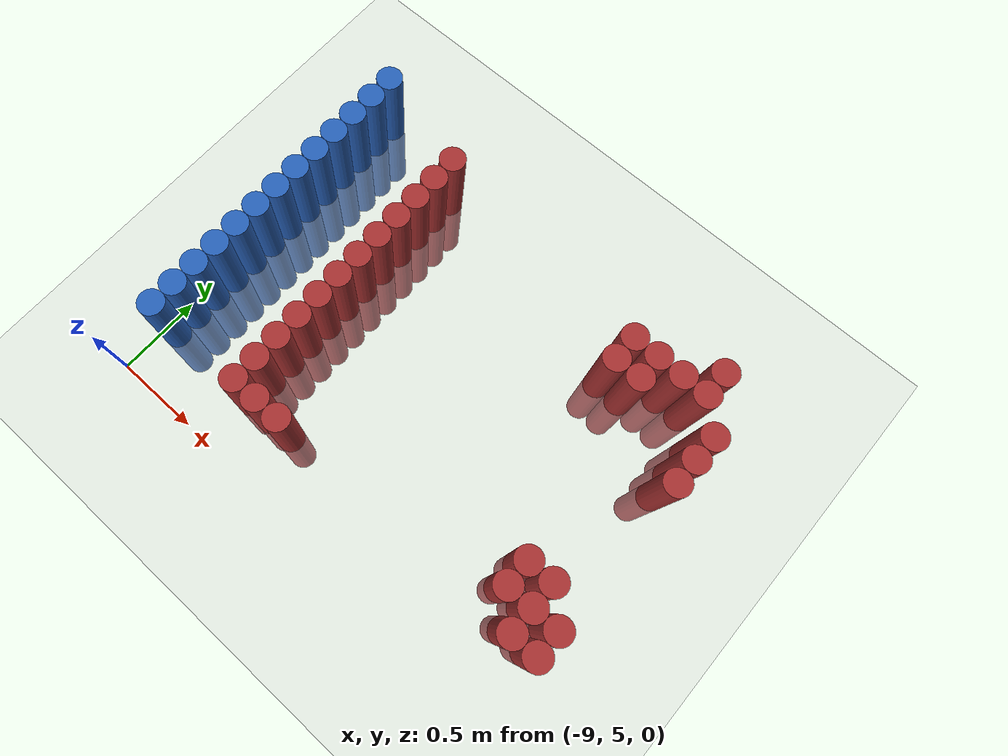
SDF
<sdf version="1.6">
 <world name="default">
  <model name="ground_plane">
   <static>1</static>
   <link name="link">
    <collision name="collision">
     <geometry><plane><normal>0 0 1</normal><size>100 100</size></plane></geometry>
     <surface><friction><ode><mu>100</mu><mu2>50</mu2></ode></friction></surface>
    </collision>
    <visual name="visual">
     <cast_shadows>0</cast_shadows>
     <geometry><plane><normal>0 0 1</normal><size>100 100</size></plane></geometry>
     <material>
      <script><uri>file://media/materials/scripts/gazebo.material</uri><name>Gazebo/Grey</name></script>
     </material>
    </visual>
   </link>
  </model>
  <model name="unit_cylinder_126">
   <static>1</static>
   <pose>-8.925000 5.325000 0.000000 0.000000 0.000000 0.000000</pose>
   <link name="link">
    <inertial>
     <mass>1</mass>
     <inertia><ixx>0.145833</ixx><ixy>0</ixy><ixz>0</ixz><iyy>0.145833</iyy><iyz>0</iyz><izz>0.125</izz></inertia>
    </inertial>
    <collision name="collision">
     <geometry><cylinder><radius>0.075000</radius><length>1</length></cylinder></geometry>
    </collision>
    <visual name="visual">
     <geometry><cylinder><radius>0.075000</radius><length>1</length></cylinder></geometry>
     <material>
      <ambient>0.152000 0.379000 0.720000 1</ambient>
      <diffuse>0.152000 0.379000 0.720000 1</diffuse>
     </material>
     <material>
      <script><name>Gazebo/Grey</name><uri>file://media/materials/scripts/gazebo.material</uri></script>
     </material>
    </visual>
   </link>
  </model>
  <model name="unit_cylinder_127">
   <static>1</static>
   <pose>-8.925000 5.475000 0.000000 0.000000 0.000000 0.000000</pose>
   <link name="link">
    <inertial>
     <mass>1</mass>
     <inertia><ixx>0.145833</ixx><ixy>0</ixy><ixz>0</ixz><iyy>0.145833</iyy><iyz>0</iyz><izz>0.125</izz></inertia>
    </inertial>
    <collision name="collision">
     <geometry><cylinder><radius>0.075000</radius><length>1</length></cylinder></geometry>
    </collision>
    <visual name="visual">
     <geometry><cylinder><radius>0.075000</radius><length>1</length></cylinder></geometry>
     <material>
      <ambient>0.152000 0.379000 0.720000 1</ambient>
      <diffuse>0.152000 0.379000 0.720000 1</diffuse>
     </material>
     <material>
      <script><name>Gazebo/Grey</name><uri>file://media/materials/scripts/gazebo.material</uri></script>
     </material>
    </visual>
   </link>
  </model>
  <model name="unit_cylinder_128">
   <static>1</static>
   <pose>-8.925000 5.625000 0.000000 0.000000 0.000000 0.000000</pose>
   <link name="link">
    <inertial>
     <mass>1</mass>
     <inertia><ixx>0.145833</ixx><ixy>0</ixy><ixz>0</ixz><iyy>0.145833</iyy><iyz>0</iyz><izz>0.125</izz></inertia>
    </inertial>
    <collision name="collision">
     <geometry><cylinder><radius>0.075000</radius><length>1</length></cylinder></geometry>
    </collision>
    <visual name="visual">
     <geometry><cylinder><radius>0.075000</radius><length>1</length></cylinder></geometry>
     <material>
      <ambient>0.152000 0.379000 0.720000 1</ambient>
      <diffuse>0.152000 0.379000 0.720000 1</diffuse>
     </material>
     <material>
      <script><name>Gazebo/Grey</name><uri>file://media/materials/scripts/gazebo.material</uri></script>
     </material>
    </visual>
   </link>
  </model>
  <model name="unit_cylinder_129">
   <static>1</static>
   <pose>-8.925000 5.775000 0.000000 0.000000 0.000000 0.000000</pose>
   <link name="link">
    <inertial>
     <mass>1</mass>
     <inertia><ixx>0.145833</ixx><ixy>0</ixy><ixz>0</ixz><iyy>0.145833</iyy><iyz>0</iyz><izz>0.125</izz></inertia>
    </inertial>
    <collision name="collision">
     <geometry><cylinder><radius>0.075000</radius><length>1</length></cylinder></geometry>
    </collision>
    <visual name="visual">
     <geometry><cylinder><radius>0.075000</radius><length>1</length></cylinder></geometry>
     <material>
      <ambient>0.152000 0.379000 0.720000 1</ambient>
      <diffuse>0.152000 0.379000 0.720000 1</diffuse>
     </material>
     <material>
      <script><name>Gazebo/Grey</name><uri>file://media/materials/scripts/gazebo.material</uri></script>
     </material>
    </visual>
   </link>
  </model>
  <model name="unit_cylinder_130">
   <static>1</static>
   <pose>-8.925000 5.925000 0.000000 0.000000 0.000000 0.000000</pose>
   <link name="link">
    <inertial>
     <mass>1</mass>
     <inertia><ixx>0.145833</ixx><ixy>0</ixy><ixz>0</ixz><iyy>0.145833</iyy><iyz>0</iyz><izz>0.125</izz></inertia>
    </inertial>
    <collision name="collision">
     <geometry><cylinder><radius>0.075000</radius><length>1</length></cylinder></geometry>
    </collision>
    <visual name="visual">
     <geometry><cylinder><radius>0.075000</radius><length>1</length></cylinder></geometry>
     <material>
      <ambient>0.152000 0.379000 0.720000 1</ambient>
      <diffuse>0.152000 0.379000 0.720000 1</diffuse>
     </material>
     <material>
      <script><name>Gazebo/Grey</name><uri>file://media/materials/scripts/gazebo.material</uri></script>
     </material>
    </visual>
   </link>
  </model>
  <model name="unit_cylinder_131">
   <static>1</static>
   <pose>-8.925000 6.075000 0.000000 0.000000 0.000000 0.000000</pose>
   <link name="link">
    <inertial>
     <mass>1</mass>
     <inertia><ixx>0.145833</ixx><ixy>0</ixy><ixz>0</ixz><iyy>0.145833</iyy><iyz>0</iyz><izz>0.125</izz></inertia>
    </inertial>
    <collision name="collision">
     <geometry><cylinder><radius>0.075000</radius><length>1</length></cylinder></geometry>
    </collision>
    <visual name="visual">
     <geometry><cylinder><radius>0.075000</radius><length>1</length></cylinder></geometry>
     <material>
      <ambient>0.152000 0.379000 0.720000 1</ambient>
      <diffuse>0.152000 0.379000 0.720000 1</diffuse>
     </material>
     <material>
      <script><name>Gazebo/Grey</name><uri>file://media/materials/scripts/gazebo.material</uri></script>
     </material>
    </visual>
   </link>
  </model>
  <model name="unit_cylinder_132">
   <static>1</static>
   <pose>-8.925000 6.225000 0.000000 0.000000 0.000000 0.000000</pose>
   <link name="link">
    <inertial>
     <mass>1</mass>
     <inertia><ixx>0.145833</ixx><ixy>0</ixy><ixz>0</ixz><iyy>0.145833</iyy><iyz>0</iyz><izz>0.125</izz></inertia>
    </inertial>
    <collision name="collision">
     <geometry><cylinder><radius>0.075000</radius><length>1</length></cylinder></geometry>
    </collision>
    <visual name="visual">
     <geometry><cylinder><radius>0.075000</radius><length>1</length></cylinder></geometry>
     <material>
      <ambient>0.152000 0.379000 0.720000 1</ambient>
      <diffuse>0.152000 0.379000 0.720000 1</diffuse>
     </material>
     <material>
      <script><name>Gazebo/Grey</name><uri>file://media/materials/scripts/gazebo.material</uri></script>
     </material>
    </visual>
   </link>
  </model>
  <model name="unit_cylinder_133">
   <static>1</static>
   <pose>-8.925000 6.375000 0.000000 0.000000 0.000000 0.000000</pose>
   <link name="link">
    <inertial>
     <mass>1</mass>
     <inertia><ixx>0.145833</ixx><ixy>0</ixy><ixz>0</ixz><iyy>0.145833</iyy><iyz>0</iyz><izz>0.125</izz></inertia>
    </inertial>
    <collision name="collision">
     <geometry><cylinder><radius>0.075000</radius><length>1</length></cylinder></geometry>
    </collision>
    <visual name="visual">
     <geometry><cylinder><radius>0.075000</radius><length>1</length></cylinder></geometry>
     <material>
      <ambient>0.152000 0.379000 0.720000 1</ambient>
      <diffuse>0.152000 0.379000 0.720000 1</diffuse>
     </material>
     <material>
      <script><name>Gazebo/Grey</name><uri>file://media/materials/scripts/gazebo.material</uri></script>
     </material>
    </visual>
   </link>
  </model>
  <model name="unit_cylinder_134">
   <static>1</static>
   <pose>-8.925000 6.525000 0.000000 0.000000 0.000000 0.000000</pose>
   <link name="link">
    <inertial>
     <mass>1</mass>
     <inertia><ixx>0.145833</ixx><ixy>0</ixy><ixz>0</ixz><iyy>0.145833</iyy><iyz>0</iyz><izz>0.125</izz></inertia>
    </inertial>
    <collision name="collision">
     <geometry><cylinder><radius>0.075000</radius><length>1</length></cylinder></geometry>
    </collision>
    <visual name="visual">
     <geometry><cylinder><radius>0.075000</radius><length>1</length></cylinder></geometry>
     <material>
      <ambient>0.152000 0.379000 0.720000 1</ambient>
      <diffuse>0.152000 0.379000 0.720000 1</diffuse>
     </material>
     <material>
      <script><name>Gazebo/Grey</name><uri>file://media/materials/scripts/gazebo.material</uri></script>
     </material>
    </visual>
   </link>
  </model>
  <model name="unit_cylinder_135">
   <static>1</static>
   <pose>-8.925000 6.675000 0.000000 0.000000 0.000000 0.000000</pose>
   <link name="link">
    <inertial>
     <mass>1</mass>
     <inertia><ixx>0.145833</ixx><ixy>0</ixy><ixz>0</ixz><iyy>0.145833</iyy><iyz>0</iyz><izz>0.125</izz></inertia>
    </inertial>
    <collision name="collision">
     <geometry><cylinder><radius>0.075000</radius><length>1</length></cylinder></geometry>
    </collision>
    <visual name="visual">
     <geometry><cylinder><radius>0.075000</radius><length>1</length></cylinder></geometry>
     <material>
      <ambient>0.152000 0.379000 0.720000 1</ambient>
      <diffuse>0.152000 0.379000 0.720000 1</diffuse>
     </material>
     <material>
      <script><name>Gazebo/Grey</name><uri>file://media/materials/scripts/gazebo.material</uri></script>
     </material>
    </visual>
   </link>
  </model>
  <model name="unit_cylinder_136">
   <static>1</static>
   <pose>-8.925000 6.825000 0.000000 0.000000 0.000000 0.000000</pose>
   <link name="link">
    <inertial>
     <mass>1</mass>
     <inertia><ixx>0.145833</ixx><ixy>0</ixy><ixz>0</ixz><iyy>0.145833</iyy><iyz>0</iyz><izz>0.125</izz></inertia>
    </inertial>
    <collision name="collision">
     <geometry><cylinder><radius>0.075000</radius><length>1</length></cylinder></geometry>
    </collision>
    <visual name="visual">
     <geometry><cylinder><radius>0.075000</radius><length>1</length></cylinder></geometry>
     <material>
      <ambient>0.152000 0.379000 0.720000 1</ambient>
      <diffuse>0.152000 0.379000 0.720000 1</diffuse>
     </material>
     <material>
      <script><name>Gazebo/Grey</name><uri>file://media/materials/scripts/gazebo.material</uri></script>
     </material>
    </visual>
   </link>
  </model>
  <model name="unit_cylinder_137">
   <static>1</static>
   <pose>-8.925000 6.975000 0.000000 0.000000 0.000000 0.000000</pose>
   <link name="link">
    <inertial>
     <mass>1</mass>
     <inertia><ixx>0.145833</ixx><ixy>0</ixy><ixz>0</ixz><iyy>0.145833</iyy><iyz>0</iyz><izz>0.125</izz></inertia>
    </inertial>
    <collision name="collision">
     <geometry><cylinder><radius>0.075000</radius><length>1</length></cylinder></geometry>
    </collision>
    <visual name="visual">
     <geometry><cylinder><radius>0.075000</radius><length>1</length></cylinder></geometry>
     <material>
      <ambient>0.152000 0.379000 0.720000 1</ambient>
      <diffuse>0.152000 0.379000 0.720000 1</diffuse>
     </material>
     <material>
      <script><name>Gazebo/Grey</name><uri>file://media/materials/scripts/gazebo.material</uri></script>
     </material>
    </visual>
   </link>
  </model>
  <model name="unit_cylinder_138">
   <static>1</static>
   <pose>-8.925000 7.125000 0.000000 0.000000 0.000000 0.000000</pose>
   <link name="link">
    <inertial>
     <mass>1</mass>
     <inertia><ixx>0.145833</ixx><ixy>0</ixy><ixz>0</ixz><iyy>0.145833</iyy><iyz>0</iyz><izz>0.125</izz></inertia>
    </inertial>
    <collision name="collision">
     <geometry><cylinder><radius>0.075000</radius><length>1</length></cylinder></geometry>
    </collision>
    <visual name="visual">
     <geometry><cylinder><radius>0.075000</radius><length>1</length></cylinder></geometry>
     <material>
      <ambient>0.152000 0.379000 0.720000 1</ambient>
      <diffuse>0.152000 0.379000 0.720000 1</diffuse>
     </material>
     <material>
      <script><name>Gazebo/Grey</name><uri>file://media/materials/scripts/gazebo.material</uri></script>
     </material>
    </visual>
   </link>
  </model>
  <model name="unit_cylinder_162">
   <static>1</static>
   <pose>-8.325000 5.325000 0.000000 0.000000 0.000000 0.000000</pose>
   <link name="link">
    <inertial>
     <mass>1</mass>
     <inertia><ixx>0.145833</ixx><ixy>0</ixy><ixz>0</ixz><iyy>0.145833</iyy><iyz>0</iyz><izz>0.125</izz></inertia>
    </inertial>
    <collision name="collision">
     <geometry><cylinder><radius>0.075000</radius><length>1</length></cylinder></geometry>
    </collision>
    <visual name="visual">
     <geometry><cylinder><radius>0.075000</radius><length>1</length></cylinder></geometry>
     <material>
      <ambient>0.648000 0.192000 0.192000 1</ambient>
      <diffuse>0.648000 0.192000 0.192000 1</diffuse>
     </material>
     <material>
      <script><name>Gazebo/Grey</name><uri>file://media/materials/scripts/gazebo.material</uri></script>
     </material>
    </visual>
   </link>
  </model>
  <model name="unit_cylinder_163">
   <static>1</static>
   <pose>-8.325000 5.475000 0.000000 0.000000 0.000000 0.000000</pose>
   <link name="link">
    <inertial>
     <mass>1</mass>
     <inertia><ixx>0.145833</ixx><ixy>0</ixy><ixz>0</ixz><iyy>0.145833</iyy><iyz>0</iyz><izz>0.125</izz></inertia>
    </inertial>
    <collision name="collision">
     <geometry><cylinder><radius>0.075000</radius><length>1</length></cylinder></geometry>
    </collision>
    <visual name="visual">
     <geometry><cylinder><radius>0.075000</radius><length>1</length></cylinder></geometry>
     <material>
      <ambient>0.648000 0.192000 0.192000 1</ambient>
      <diffuse>0.648000 0.192000 0.192000 1</diffuse>
     </material>
     <material>
      <script><name>Gazebo/Grey</name><uri>file://media/materials/scripts/gazebo.material</uri></script>
     </material>
    </visual>
   </link>
  </model>
  <model name="unit_cylinder_164">
   <static>1</static>
   <pose>-8.325000 5.625000 0.000000 0.000000 0.000000 0.000000</pose>
   <link name="link">
    <inertial>
     <mass>1</mass>
     <inertia><ixx>0.145833</ixx><ixy>0</ixy><ixz>0</ixz><iyy>0.145833</iyy><iyz>0</iyz><izz>0.125</izz></inertia>
    </inertial>
    <collision name="collision">
     <geometry><cylinder><radius>0.075000</radius><length>1</length></cylinder></geometry>
    </collision>
    <visual name="visual">
     <geometry><cylinder><radius>0.075000</radius><length>1</length></cylinder></geometry>
     <material>
      <ambient>0.648000 0.192000 0.192000 1</ambient>
      <diffuse>0.648000 0.192000 0.192000 1</diffuse>
     </material>
     <material>
      <script><name>Gazebo/Grey</name><uri>file://media/materials/scripts/gazebo.material</uri></script>
     </material>
    </visual>
   </link>
  </model>
  <model name="unit_cylinder_165">
   <static>1</static>
   <pose>-8.325000 5.775000 0.000000 0.000000 0.000000 0.000000</pose>
   <link name="link">
    <inertial>
     <mass>1</mass>
     <inertia><ixx>0.145833</ixx><ixy>0</ixy><ixz>0</ixz><iyy>0.145833</iyy><iyz>0</iyz><izz>0.125</izz></inertia>
    </inertial>
    <collision name="collision">
     <geometry><cylinder><radius>0.075000</radius><length>1</length></cylinder></geometry>
    </collision>
    <visual name="visual">
     <geometry><cylinder><radius>0.075000</radius><length>1</length></cylinder></geometry>
     <material>
      <ambient>0.648000 0.192000 0.192000 1</ambient>
      <diffuse>0.648000 0.192000 0.192000 1</diffuse>
     </material>
     <material>
      <script><name>Gazebo/Grey</name><uri>file://media/materials/scripts/gazebo.material</uri></script>
     </material>
    </visual>
   </link>
  </model>
  <model name="unit_cylinder_166">
   <static>1</static>
   <pose>-8.325000 5.925000 0.000000 0.000000 0.000000 0.000000</pose>
   <link name="link">
    <inertial>
     <mass>1</mass>
     <inertia><ixx>0.145833</ixx><ixy>0</ixy><ixz>0</ixz><iyy>0.145833</iyy><iyz>0</iyz><izz>0.125</izz></inertia>
    </inertial>
    <collision name="collision">
     <geometry><cylinder><radius>0.075000</radius><length>1</length></cylinder></geometry>
    </collision>
    <visual name="visual">
     <geometry><cylinder><radius>0.075000</radius><length>1</length></cylinder></geometry>
     <material>
      <ambient>0.648000 0.192000 0.192000 1</ambient>
      <diffuse>0.648000 0.192000 0.192000 1</diffuse>
     </material>
     <material>
      <script><name>Gazebo/Grey</name><uri>file://media/materials/scripts/gazebo.material</uri></script>
     </material>
    </visual>
   </link>
  </model>
  <model name="unit_cylinder_167">
   <static>1</static>
   <pose>-8.325000 6.075000 0.000000 0.000000 0.000000 0.000000</pose>
   <link name="link">
    <inertial>
     <mass>1</mass>
     <inertia><ixx>0.145833</ixx><ixy>0</ixy><ixz>0</ixz><iyy>0.145833</iyy><iyz>0</iyz><izz>0.125</izz></inertia>
    </inertial>
    <collision name="collision">
     <geometry><cylinder><radius>0.075000</radius><length>1</length></cylinder></geometry>
    </collision>
    <visual name="visual">
     <geometry><cylinder><radius>0.075000</radius><length>1</length></cylinder></geometry>
     <material>
      <ambient>0.648000 0.192000 0.192000 1</ambient>
      <diffuse>0.648000 0.192000 0.192000 1</diffuse>
     </material>
     <material>
      <script><name>Gazebo/Grey</name><uri>file://media/materials/scripts/gazebo.material</uri></script>
     </material>
    </visual>
   </link>
  </model>
  <model name="unit_cylinder_168">
   <static>1</static>
   <pose>-8.325000 6.225000 0.000000 0.000000 0.000000 0.000000</pose>
   <link name="link">
    <inertial>
     <mass>1</mass>
     <inertia><ixx>0.145833</ixx><ixy>0</ixy><ixz>0</ixz><iyy>0.145833</iyy><iyz>0</iyz><izz>0.125</izz></inertia>
    </inertial>
    <collision name="collision">
     <geometry><cylinder><radius>0.075000</radius><length>1</length></cylinder></geometry>
    </collision>
    <visual name="visual">
     <geometry><cylinder><radius>0.075000</radius><length>1</length></cylinder></geometry>
     <material>
      <ambient>0.648000 0.192000 0.192000 1</ambient>
      <diffuse>0.648000 0.192000 0.192000 1</diffuse>
     </material>
     <material>
      <script><name>Gazebo/Grey</name><uri>file://media/materials/scripts/gazebo.material</uri></script>
     </material>
    </visual>
   </link>
  </model>
  <model name="unit_cylinder_169">
   <static>1</static>
   <pose>-8.325000 6.375000 0.000000 0.000000 0.000000 0.000000</pose>
   <link name="link">
    <inertial>
     <mass>1</mass>
     <inertia><ixx>0.145833</ixx><ixy>0</ixy><ixz>0</ixz><iyy>0.145833</iyy><iyz>0</iyz><izz>0.125</izz></inertia>
    </inertial>
    <collision name="collision">
     <geometry><cylinder><radius>0.075000</radius><length>1</length></cylinder></geometry>
    </collision>
    <visual name="visual">
     <geometry><cylinder><radius>0.075000</radius><length>1</length></cylinder></geometry>
     <material>
      <ambient>0.648000 0.192000 0.192000 1</ambient>
      <diffuse>0.648000 0.192000 0.192000 1</diffuse>
     </material>
     <material>
      <script><name>Gazebo/Grey</name><uri>file://media/materials/scripts/gazebo.material</uri></script>
     </material>
    </visual>
   </link>
  </model>
  <model name="unit_cylinder_170">
   <static>1</static>
   <pose>-8.325000 6.525000 0.000000 0.000000 0.000000 0.000000</pose>
   <link name="link">
    <inertial>
     <mass>1</mass>
     <inertia><ixx>0.145833</ixx><ixy>0</ixy><ixz>0</ixz><iyy>0.145833</iyy><iyz>0</iyz><izz>0.125</izz></inertia>
    </inertial>
    <collision name="collision">
     <geometry><cylinder><radius>0.075000</radius><length>1</length></cylinder></geometry>
    </collision>
    <visual name="visual">
     <geometry><cylinder><radius>0.075000</radius><length>1</length></cylinder></geometry>
     <material>
      <ambient>0.648000 0.192000 0.192000 1</ambient>
      <diffuse>0.648000 0.192000 0.192000 1</diffuse>
     </material>
     <material>
      <script><name>Gazebo/Grey</name><uri>file://media/materials/scripts/gazebo.material</uri></script>
     </material>
    </visual>
   </link>
  </model>
  <model name="unit_cylinder_171">
   <static>1</static>
   <pose>-8.325000 6.675000 0.000000 0.000000 0.000000 0.000000</pose>
   <link name="link">
    <inertial>
     <mass>1</mass>
     <inertia><ixx>0.145833</ixx><ixy>0</ixy><ixz>0</ixz><iyy>0.145833</iyy><iyz>0</iyz><izz>0.125</izz></inertia>
    </inertial>
    <collision name="collision">
     <geometry><cylinder><radius>0.075000</radius><length>1</length></cylinder></geometry>
    </collision>
    <visual name="visual">
     <geometry><cylinder><radius>0.075000</radius><length>1</length></cylinder></geometry>
     <material>
      <ambient>0.648000 0.192000 0.192000 1</ambient>
      <diffuse>0.648000 0.192000 0.192000 1</diffuse>
     </material>
     <material>
      <script><name>Gazebo/Grey</name><uri>file://media/materials/scripts/gazebo.material</uri></script>
     </material>
    </visual>
   </link>
  </model>
  <model name="unit_cylinder_172">
   <static>1</static>
   <pose>-8.325000 6.825000 0.000000 0.000000 0.000000 0.000000</pose>
   <link name="link">
    <inertial>
     <mass>1</mass>
     <inertia><ixx>0.145833</ixx><ixy>0</ixy><ixz>0</ixz><iyy>0.145833</iyy><iyz>0</iyz><izz>0.125</izz></inertia>
    </inertial>
    <collision name="collision">
     <geometry><cylinder><radius>0.075000</radius><length>1</length></cylinder></geometry>
    </collision>
    <visual name="visual">
     <geometry><cylinder><radius>0.075000</radius><length>1</length></cylinder></geometry>
     <material>
      <ambient>0.648000 0.192000 0.192000 1</ambient>
      <diffuse>0.648000 0.192000 0.192000 1</diffuse>
     </material>
     <material>
      <script><name>Gazebo/Grey</name><uri>file://media/materials/scripts/gazebo.material</uri></script>
     </material>
    </visual>
   </link>
  </model>
  <model name="unit_cylinder_173">
   <static>1</static>
   <pose>-8.325000 6.975000 0.000000 0.000000 0.000000 0.000000</pose>
   <link name="link">
    <inertial>
     <mass>1</mass>
     <inertia><ixx>0.145833</ixx><ixy>0</ixy><ixz>0</ixz><iyy>0.145833</iyy><iyz>0</iyz><izz>0.125</izz></inertia>
    </inertial>
    <collision name="collision">
     <geometry><cylinder><radius>0.075000</radius><length>1</length></cylinder></geometry>
    </collision>
    <visual name="visual">
     <geometry><cylinder><radius>0.075000</radius><length>1</length></cylinder></geometry>
     <material>
      <ambient>0.648000 0.192000 0.192000 1</ambient>
      <diffuse>0.648000 0.192000 0.192000 1</diffuse>
     </material>
     <material>
      <script><name>Gazebo/Grey</name><uri>file://media/materials/scripts/gazebo.material</uri></script>
     </material>
    </visual>
   </link>
  </model>
  <model name="unit_cylinder_184">
   <static>1</static>
   <pose>-8.175000 5.325000 0.000000 0.000000 0.000000 0.000000</pose>
   <link name="link">
    <inertial>
     <mass>1</mass>
     <inertia><ixx>0.145833</ixx><ixy>0</ixy><ixz>0</ixz><iyy>0.145833</iyy><iyz>0</iyz><izz>0.125</izz></inertia>
    </inertial>
    <collision name="collision">
     <geometry><cylinder><radius>0.075000</radius><length>1</length></cylinder></geometry>
    </collision>
    <visual name="visual">
     <geometry><cylinder><radius>0.075000</radius><length>1</length></cylinder></geometry>
     <material>
      <ambient>0.648000 0.192000 0.192000 1</ambient>
      <diffuse>0.648000 0.192000 0.192000 1</diffuse>
     </material>
     <material>
      <script><name>Gazebo/Grey</name><uri>file://media/materials/scripts/gazebo.material</uri></script>
     </material>
    </visual>
   </link>
  </model>
  <model name="unit_cylinder_188">
   <static>1</static>
   <pose>-8.025000 5.325000 0.000000 0.000000 0.000000 0.000000</pose>
   <link name="link">
    <inertial>
     <mass>1</mass>
     <inertia><ixx>0.145833</ixx><ixy>0</ixy><ixz>0</ixz><iyy>0.145833</iyy><iyz>0</iyz><izz>0.125</izz></inertia>
    </inertial>
    <collision name="collision">
     <geometry><cylinder><radius>0.075000</radius><length>1</length></cylinder></geometry>
    </collision>
    <visual name="visual">
     <geometry><cylinder><radius>0.075000</radius><length>1</length></cylinder></geometry>
     <material>
      <ambient>0.648000 0.192000 0.192000 1</ambient>
      <diffuse>0.648000 0.192000 0.192000 1</diffuse>
     </material>
     <material>
      <script><name>Gazebo/Grey</name><uri>file://media/materials/scripts/gazebo.material</uri></script>
     </material>
    </visual>
   </link>
  </model>
  <model name="unit_cylinder_203">
   <static>1</static>
   <pose>-6.975000 6.675000 0.000000 0.000000 0.000000 0.000000</pose>
   <link name="link">
    <inertial>
     <mass>1</mass>
     <inertia><ixx>0.145833</ixx><ixy>0</ixy><ixz>0</ixz><iyy>0.145833</iyy><iyz>0</iyz><izz>0.125</izz></inertia>
    </inertial>
    <collision name="collision">
     <geometry><cylinder><radius>0.075000</radius><length>1</length></cylinder></geometry>
    </collision>
    <visual name="visual">
     <geometry><cylinder><radius>0.075000</radius><length>1</length></cylinder></geometry>
     <material>
      <ambient>0.648000 0.192000 0.192000 1</ambient>
      <diffuse>0.648000 0.192000 0.192000 1</diffuse>
     </material>
     <material>
      <script><name>Gazebo/Grey</name><uri>file://media/materials/scripts/gazebo.material</uri></script>
     </material>
    </visual>
   </link>
  </model>
  <model name="unit_cylinder_204">
   <static>1</static>
   <pose>-6.975000 6.825000 0.000000 0.000000 0.000000 0.000000</pose>
   <link name="link">
    <inertial>
     <mass>1</mass>
     <inertia><ixx>0.145833</ixx><ixy>0</ixy><ixz>0</ixz><iyy>0.145833</iyy><iyz>0</iyz><izz>0.125</izz></inertia>
    </inertial>
    <collision name="collision">
     <geometry><cylinder><radius>0.075000</radius><length>1</length></cylinder></geometry>
    </collision>
    <visual name="visual">
     <geometry><cylinder><radius>0.075000</radius><length>1</length></cylinder></geometry>
     <material>
      <ambient>0.648000 0.192000 0.192000 1</ambient>
      <diffuse>0.648000 0.192000 0.192000 1</diffuse>
     </material>
     <material>
      <script><name>Gazebo/Grey</name><uri>file://media/materials/scripts/gazebo.material</uri></script>
     </material>
    </visual>
   </link>
  </model>
  <model name="unit_cylinder_205">
   <static>1</static>
   <pose>-6.825000 6.675000 0.000000 0.000000 0.000000 0.000000</pose>
   <link name="link">
    <inertial>
     <mass>1</mass>
     <inertia><ixx>0.145833</ixx><ixy>0</ixy><ixz>0</ixz><iyy>0.145833</iyy><iyz>0</iyz><izz>0.125</izz></inertia>
    </inertial>
    <collision name="collision">
     <geometry><cylinder><radius>0.075000</radius><length>1</length></cylinder></geometry>
    </collision>
    <visual name="visual">
     <geometry><cylinder><radius>0.075000</radius><length>1</length></cylinder></geometry>
     <material>
      <ambient>0.648000 0.192000 0.192000 1</ambient>
      <diffuse>0.648000 0.192000 0.192000 1</diffuse>
     </material>
     <material>
      <script><name>Gazebo/Grey</name><uri>file://media/materials/scripts/gazebo.material</uri></script>
     </material>
    </visual>
   </link>
  </model>
  <model name="unit_cylinder_206">
   <static>1</static>
   <pose>-6.825000 6.825000 0.000000 0.000000 0.000000 0.000000</pose>
   <link name="link">
    <inertial>
     <mass>1</mass>
     <inertia><ixx>0.145833</ixx><ixy>0</ixy><ixz>0</ixz><iyy>0.145833</iyy><iyz>0</iyz><izz>0.125</izz></inertia>
    </inertial>
    <collision name="collision">
     <geometry><cylinder><radius>0.075000</radius><length>1</length></cylinder></geometry>
    </collision>
    <visual name="visual">
     <geometry><cylinder><radius>0.075000</radius><length>1</length></cylinder></geometry>
     <material>
      <ambient>0.648000 0.192000 0.192000 1</ambient>
      <diffuse>0.648000 0.192000 0.192000 1</diffuse>
     </material>
     <material>
      <script><name>Gazebo/Grey</name><uri>file://media/materials/scripts/gazebo.material</uri></script>
     </material>
    </visual>
   </link>
  </model>
  <model name="unit_cylinder_207">
   <static>1</static>
   <pose>-6.675000 5.475000 0.000000 0.000000 0.000000 0.000000</pose>
   <link name="link">
    <inertial>
     <mass>1</mass>
     <inertia><ixx>0.145833</ixx><ixy>0</ixy><ixz>0</ixz><iyy>0.145833</iyy><iyz>0</iyz><izz>0.125</izz></inertia>
    </inertial>
    <collision name="collision">
     <geometry><cylinder><radius>0.075000</radius><length>1</length></cylinder></geometry>
    </collision>
    <visual name="visual">
     <geometry><cylinder><radius>0.075000</radius><length>1</length></cylinder></geometry>
     <material>
      <ambient>0.648000 0.192000 0.192000 1</ambient>
      <diffuse>0.648000 0.192000 0.192000 1</diffuse>
     </material>
     <material>
      <script><name>Gazebo/Grey</name><uri>file://media/materials/scripts/gazebo.material</uri></script>
     </material>
    </visual>
   </link>
  </model>
  <model name="unit_cylinder_208">
   <static>1</static>
   <pose>-6.675000 5.625000 0.000000 0.000000 0.000000 0.000000</pose>
   <link name="link">
    <inertial>
     <mass>1</mass>
     <inertia><ixx>0.145833</ixx><ixy>0</ixy><ixz>0</ixz><iyy>0.145833</iyy><iyz>0</iyz><izz>0.125</izz></inertia>
    </inertial>
    <collision name="collision">
     <geometry><cylinder><radius>0.075000</radius><length>1</length></cylinder></geometry>
    </collision>
    <visual name="visual">
     <geometry><cylinder><radius>0.075000</radius><length>1</length></cylinder></geometry>
     <material>
      <ambient>0.648000 0.192000 0.192000 1</ambient>
      <diffuse>0.648000 0.192000 0.192000 1</diffuse>
     </material>
     <material>
      <script><name>Gazebo/Grey</name><uri>file://media/materials/scripts/gazebo.material</uri></script>
     </material>
    </visual>
   </link>
  </model>
  <model name="unit_cylinder_209">
   <static>1</static>
   <pose>-6.675000 6.825000 0.000000 0.000000 0.000000 0.000000</pose>
   <link name="link">
    <inertial>
     <mass>1</mass>
     <inertia><ixx>0.145833</ixx><ixy>0</ixy><ixz>0</ixz><iyy>0.145833</iyy><iyz>0</iyz><izz>0.125</izz></inertia>
    </inertial>
    <collision name="collision">
     <geometry><cylinder><radius>0.075000</radius><length>1</length></cylinder></geometry>
    </collision>
    <visual name="visual">
     <geometry><cylinder><radius>0.075000</radius><length>1</length></cylinder></geometry>
     <material>
      <ambient>0.648000 0.192000 0.192000 1</ambient>
      <diffuse>0.648000 0.192000 0.192000 1</diffuse>
     </material>
     <material>
      <script><name>Gazebo/Grey</name><uri>file://media/materials/scripts/gazebo.material</uri></script>
     </material>
    </visual>
   </link>
  </model>
  <model name="unit_cylinder_210">
   <static>1</static>
   <pose>-6.525000 5.325000 0.000000 0.000000 0.000000 0.000000</pose>
   <link name="link">
    <inertial>
     <mass>1</mass>
     <inertia><ixx>0.145833</ixx><ixy>0</ixy><ixz>0</ixz><iyy>0.145833</iyy><iyz>0</iyz><izz>0.125</izz></inertia>
    </inertial>
    <collision name="collision">
     <geometry><cylinder><radius>0.075000</radius><length>1</length></cylinder></geometry>
    </collision>
    <visual name="visual">
     <geometry><cylinder><radius>0.075000</radius><length>1</length></cylinder></geometry>
     <material>
      <ambient>0.648000 0.192000 0.192000 1</ambient>
      <diffuse>0.648000 0.192000 0.192000 1</diffuse>
     </material>
     <material>
      <script><name>Gazebo/Grey</name><uri>file://media/materials/scripts/gazebo.material</uri></script>
     </material>
    </visual>
   </link>
  </model>
  <model name="unit_cylinder_211">
   <static>1</static>
   <pose>-6.525000 5.475000 0.000000 0.000000 0.000000 0.000000</pose>
   <link name="link">
    <inertial>
     <mass>1</mass>
     <inertia><ixx>0.145833</ixx><ixy>0</ixy><ixz>0</ixz><iyy>0.145833</iyy><iyz>0</iyz><izz>0.125</izz></inertia>
    </inertial>
    <collision name="collision">
     <geometry><cylinder><radius>0.075000</radius><length>1</length></cylinder></geometry>
    </collision>
    <visual name="visual">
     <geometry><cylinder><radius>0.075000</radius><length>1</length></cylinder></geometry>
     <material>
      <ambient>0.648000 0.192000 0.192000 1</ambient>
      <diffuse>0.648000 0.192000 0.192000 1</diffuse>
     </material>
     <material>
      <script><name>Gazebo/Grey</name><uri>file://media/materials/scripts/gazebo.material</uri></script>
     </material>
    </visual>
   </link>
  </model>
  <model name="unit_cylinder_212">
   <static>1</static>
   <pose>-6.525000 5.625000 0.000000 0.000000 0.000000 0.000000</pose>
   <link name="link">
    <inertial>
     <mass>1</mass>
     <inertia><ixx>0.145833</ixx><ixy>0</ixy><ixz>0</ixz><iyy>0.145833</iyy><iyz>0</iyz><izz>0.125</izz></inertia>
    </inertial>
    <collision name="collision">
     <geometry><cylinder><radius>0.075000</radius><length>1</length></cylinder></geometry>
    </collision>
    <visual name="visual">
     <geometry><cylinder><radius>0.075000</radius><length>1</length></cylinder></geometry>
     <material>
      <ambient>0.648000 0.192000 0.192000 1</ambient>
      <diffuse>0.648000 0.192000 0.192000 1</diffuse>
     </material>
     <material>
      <script><name>Gazebo/Grey</name><uri>file://media/materials/scripts/gazebo.material</uri></script>
     </material>
    </visual>
   </link>
  </model>
  <model name="unit_cylinder_213">
   <static>1</static>
   <pose>-6.525000 6.825000 0.000000 0.000000 0.000000 0.000000</pose>
   <link name="link">
    <inertial>
     <mass>1</mass>
     <inertia><ixx>0.145833</ixx><ixy>0</ixy><ixz>0</ixz><iyy>0.145833</iyy><iyz>0</iyz><izz>0.125</izz></inertia>
    </inertial>
    <collision name="collision">
     <geometry><cylinder><radius>0.075000</radius><length>1</length></cylinder></geometry>
    </collision>
    <visual name="visual">
     <geometry><cylinder><radius>0.075000</radius><length>1</length></cylinder></geometry>
     <material>
      <ambient>0.648000 0.192000 0.192000 1</ambient>
      <diffuse>0.648000 0.192000 0.192000 1</diffuse>
     </material>
     <material>
      <script><name>Gazebo/Grey</name><uri>file://media/materials/scripts/gazebo.material</uri></script>
     </material>
    </visual>
   </link>
  </model>
  <model name="unit_cylinder_214">
   <static>1</static>
   <pose>-6.525000 6.975000 0.000000 0.000000 0.000000 0.000000</pose>
   <link name="link">
    <inertial>
     <mass>1</mass>
     <inertia><ixx>0.145833</ixx><ixy>0</ixy><ixz>0</ixz><iyy>0.145833</iyy><iyz>0</iyz><izz>0.125</izz></inertia>
    </inertial>
    <collision name="collision">
     <geometry><cylinder><radius>0.075000</radius><length>1</length></cylinder></geometry>
    </collision>
    <visual name="visual">
     <geometry><cylinder><radius>0.075000</radius><length>1</length></cylinder></geometry>
     <material>
      <ambient>0.648000 0.192000 0.192000 1</ambient>
      <diffuse>0.648000 0.192000 0.192000 1</diffuse>
     </material>
     <material>
      <script><name>Gazebo/Grey</name><uri>file://media/materials/scripts/gazebo.material</uri></script>
     </material>
    </visual>
   </link>
  </model>
  <model name="unit_cylinder_215">
   <static>1</static>
   <pose>-6.375000 5.325000 0.000000 0.000000 0.000000 0.000000</pose>
   <link name="link">
    <inertial>
     <mass>1</mass>
     <inertia><ixx>0.145833</ixx><ixy>0</ixy><ixz>0</ixz><iyy>0.145833</iyy><iyz>0</iyz><izz>0.125</izz></inertia>
    </inertial>
    <collision name="collision">
     <geometry><cylinder><radius>0.075000</radius><length>1</length></cylinder></geometry>
    </collision>
    <visual name="visual">
     <geometry><cylinder><radius>0.075000</radius><length>1</length></cylinder></geometry>
     <material>
      <ambient>0.648000 0.192000 0.192000 1</ambient>
      <diffuse>0.648000 0.192000 0.192000 1</diffuse>
     </material>
     <material>
      <script><name>Gazebo/Grey</name><uri>file://media/materials/scripts/gazebo.material</uri></script>
     </material>
    </visual>
   </link>
  </model>
  <model name="unit_cylinder_216">
   <static>1</static>
   <pose>-6.375000 5.475000 0.000000 0.000000 0.000000 0.000000</pose>
   <link name="link">
    <inertial>
     <mass>1</mass>
     <inertia><ixx>0.145833</ixx><ixy>0</ixy><ixz>0</ixz><iyy>0.145833</iyy><iyz>0</iyz><izz>0.125</izz></inertia>
    </inertial>
    <collision name="collision">
     <geometry><cylinder><radius>0.075000</radius><length>1</length></cylinder></geometry>
    </collision>
    <visual name="visual">
     <geometry><cylinder><radius>0.075000</radius><length>1</length></cylinder></geometry>
     <material>
      <ambient>0.648000 0.192000 0.192000 1</ambient>
      <diffuse>0.648000 0.192000 0.192000 1</diffuse>
     </material>
     <material>
      <script><name>Gazebo/Grey</name><uri>file://media/materials/scripts/gazebo.material</uri></script>
     </material>
    </visual>
   </link>
  </model>
  <model name="unit_cylinder_217">
   <static>1</static>
   <pose>-6.375000 6.375000 0.000000 0.000000 0.000000 0.000000</pose>
   <link name="link">
    <inertial>
     <mass>1</mass>
     <inertia><ixx>0.145833</ixx><ixy>0</ixy><ixz>0</ixz><iyy>0.145833</iyy><iyz>0</iyz><izz>0.125</izz></inertia>
    </inertial>
    <collision name="collision">
     <geometry><cylinder><radius>0.075000</radius><length>1</length></cylinder></geometry>
    </collision>
    <visual name="visual">
     <geometry><cylinder><radius>0.075000</radius><length>1</length></cylinder></geometry>
     <material>
      <ambient>0.648000 0.192000 0.192000 1</ambient>
      <diffuse>0.648000 0.192000 0.192000 1</diffuse>
     </material>
     <material>
      <script><name>Gazebo/Grey</name><uri>file://media/materials/scripts/gazebo.material</uri></script>
     </material>
    </visual>
   </link>
  </model>
  <model name="unit_cylinder_218">
   <static>1</static>
   <pose>-6.375000 6.525000 0.000000 0.000000 0.000000 0.000000</pose>
   <link name="link">
    <inertial>
     <mass>1</mass>
     <inertia><ixx>0.145833</ixx><ixy>0</ixy><ixz>0</ixz><iyy>0.145833</iyy><iyz>0</iyz><izz>0.125</izz></inertia>
    </inertial>
    <collision name="collision">
     <geometry><cylinder><radius>0.075000</radius><length>1</length></cylinder></geometry>
    </collision>
    <visual name="visual">
     <geometry><cylinder><radius>0.075000</radius><length>1</length></cylinder></geometry>
     <material>
      <ambient>0.648000 0.192000 0.192000 1</ambient>
      <diffuse>0.648000 0.192000 0.192000 1</diffuse>
     </material>
     <material>
      <script><name>Gazebo/Grey</name><uri>file://media/materials/scripts/gazebo.material</uri></script>
     </material>
    </visual>
   </link>
  </model>
  <model name="unit_cylinder_219">
   <static>1</static>
   <pose>-6.375000 6.675000 0.000000 0.000000 0.000000 0.000000</pose>
   <link name="link">
    <inertial>
     <mass>1</mass>
     <inertia><ixx>0.145833</ixx><ixy>0</ixy><ixz>0</ixz><iyy>0.145833</iyy><iyz>0</iyz><izz>0.125</izz></inertia>
    </inertial>
    <collision name="collision">
     <geometry><cylinder><radius>0.075000</radius><length>1</length></cylinder></geometry>
    </collision>
    <visual name="visual">
     <geometry><cylinder><radius>0.075000</radius><length>1</length></cylinder></geometry>
     <material>
      <ambient>0.648000 0.192000 0.192000 1</ambient>
      <diffuse>0.648000 0.192000 0.192000 1</diffuse>
     </material>
     <material>
      <script><name>Gazebo/Grey</name><uri>file://media/materials/scripts/gazebo.material</uri></script>
     </material>
    </visual>
   </link>
  </model>
 </world>
</sdf>
